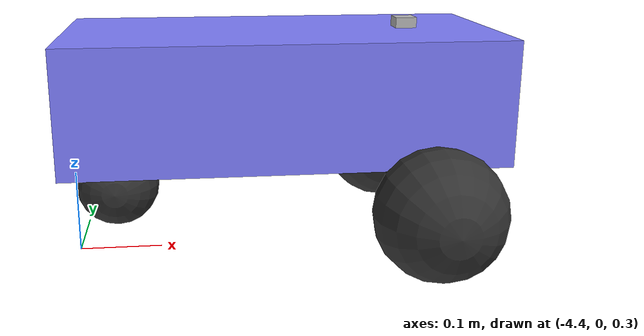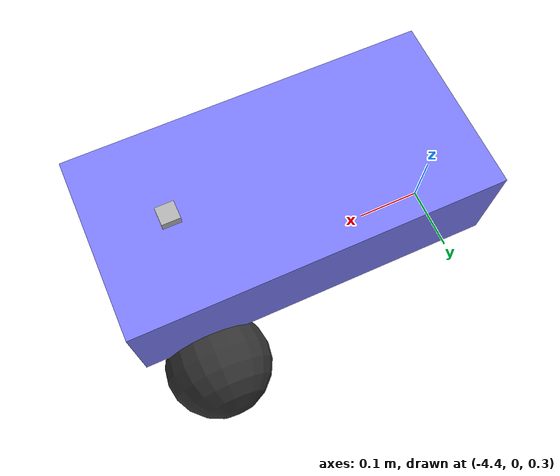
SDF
<?xml version="1.0" ?>
<!--
  You can echo lidar messages using:
    gz topic -e -t /lidar
-->
<sdf version="1.9">
    <model name='robot3'>
      <pose>-4 0 0.325 0 0 0.0</pose>
      <link name='chassis'>
        <pose>-0.151427 -0 0.175 0 -0 0</pose>
        <inertial>
          <mass>1.14395</mass>
          <inertia>
            <ixx>0.126164</ixx>
            <ixy>0</ixy>
            <ixz>0</ixz>
            <iyy>0.416519</iyy>
            <iyz>0</iyz>
            <izz>0.481014</izz>
          </inertia>
        </inertial>
        <visual name='visual'>
          <geometry>
            <box>
              <size>0.503 0.25 0.143</size>
            </box>
          </geometry>
          <material>
            <ambient>0.5 0.5 1.0 1</ambient>
            <diffuse>0.5 0.5 1.0 1</diffuse>
            <specular>0.0 0.0 1.0 1</specular>
          </material>
        </visual>
        <collision name='collision'>
          <geometry>
            <box>
              <size>0.503 0.25 0.143</size>
            </box>
          </geometry>
        </collision>
      </link>

      <link name="lidar_link">
        <pose>0 0 0.2465 0 0 0</pose>
        <inertial>
          <mass>0.1</mass>
          <inertia>
            <ixx>0.000166667</ixx>
            <iyy>0.000166667</iyy>
            <izz>0.000166667</izz>
          </inertia>
        </inertial>
        <collision name="collision">
          <geometry>
            <box>
              <size>0.025 0.025 0.025</size>
            </box>
          </geometry>
        </collision>
        <visual name="visual">
          <geometry>
            <box>
              <size>0.025 0.025 0.025</size>
            </box>
          </geometry>
        </visual>
        <sensor name='gpu_lidar' type='gpu_lidar'>
        <pose>0 0 0 0 0 0</pose>
          <topic>/model/robot3/lidar2</topic>
          <update_rate>10</update_rate>
          <lidar>
            <scan>
              <horizontal>
                <samples>640</samples>
                <resolution>1</resolution>
                <min_angle>-1.396263</min_angle>
                <max_angle>1.396263</max_angle>
              </horizontal>
              <vertical>
                <samples>1</samples>
                <resolution>1</resolution>
                <min_angle>0.0</min_angle>
                <max_angle>0.0</max_angle>
              </vertical>
              <!-- add guassian noise-->
              <noise>
                <type>gaussian</type>
                <mean>0.0</mean>
                <stddev>0.01</stddev>
              </noise>
            </scan>
            <range>
              <min>0.08</min>
              <max>10.0</max>
              <resolution>0.01</resolution>
            </range>
          </lidar>
          <always_on>1</always_on>
          <visualize>true</visualize>
        </sensor>
      </link>

      <link name='left_wheel'>
        <pose>0.01 0.15 0.06 -1.5707 0 0</pose>
        <inertial>
          <mass>2</mass>
          <inertia>
            <ixx>0.145833</ixx>
            <ixy>0</ixy>
            <ixz>0</ixz>
            <iyy>0.145833</iyy>
            <iyz>0</iyz>
            <izz>0.125</izz>
          </inertia>
        </inertial>
        <visual name='visual'>
          <geometry>
            <sphere>
              <radius>0.075</radius>
            </sphere>
          </geometry>
          <material>
            <ambient>0.2 0.2 0.2 1</ambient>
            <diffuse>0.2 0.2 0.2 1</diffuse>
            <specular>0.2 0.2 0.2 1</specular>
          </material>
        </visual>
        <collision name='collision'>
          <geometry>
            <sphere>
              <radius>0.075</radius>
            </sphere>
          </geometry>
        </collision>
      </link>

      <link name='right_wheel'>
        <pose>0.01 -0.15 0.06 -1.5707 0 0</pose>
        <inertial>
          <mass>2</mass>
          <inertia>
            <ixx>0.145833</ixx>
            <ixy>0</ixy>
            <ixz>0</ixz>
            <iyy>0.145833</iyy>
            <iyz>0</iyz>
            <izz>0.125</izz>
          </inertia>
        </inertial>
        <visual name='visual'>
          <geometry>
            <sphere>
              <radius>0.075</radius>
            </sphere>
          </geometry>
          <material>
            <ambient>0.2 0.2 0.2 1</ambient>
            <diffuse>0.2 0.2 0.2 1</diffuse>
            <specular>0.2 0.2 0.2 1</specular>
          </material>
        </visual>
        <collision name='collision'>
          <geometry>
            <sphere>
              <radius>0.075</radius>
            </sphere>
          </geometry>
        </collision>
      </link>

      <link name='caster'>
        <pose>-0.35 0 0.06 -1.5707 0 0 </pose>
        <inertial>
          <mass>1</mass>
          <inertia>
            <ixx>0.1</ixx>
            <ixy>0</ixy>
            <ixz>0</ixz>
            <iyy>0.1</iyy>
            <iyz>0</iyz>
            <izz>0.1</izz>
          </inertia>
        </inertial>
        <visual name='visual'>
          <geometry>
            <sphere>
              <radius>0.05</radius>
            </sphere>
          </geometry>
          <material>
            <ambient>0.2 0.2 0.2 1</ambient>
            <diffuse>0.2 0.2 0.2 1</diffuse>
            <specular>0.2 0.2 0.2 1</specular>
          </material>
        </visual>
        <collision name='collision'>
          <geometry>
            <sphere>
              <radius>0.05</radius>
            </sphere>
          </geometry>
        </collision>
      </link>

      <joint name='lidar_sensor_joint' type='fixed'>
        <parent>chassis</parent>
        <child>lidar_link</child>
      </joint>

      <joint name='left_wheel_joint' type='revolute'>
        <parent>chassis</parent>
        <child>left_wheel</child>
        <axis>
          <xyz>0 0 1</xyz>
          <limit>
            <lower>-1.79769e+308</lower>
            <upper>1.79769e+308</upper>
          </limit>
        </axis>
      </joint>

      <joint name='right_wheel_joint' type='revolute'>
        <parent>chassis</parent>
        <child>right_wheel</child>
        <axis>
          <xyz>0 0 1</xyz>
          <limit>
            <lower>-1.79769e+308</lower>
            <upper>1.79769e+308</upper>
          </limit>
        </axis>
      </joint>

      <joint name='caster_wheel' type='ball'>
        <parent>chassis</parent>
        <child>caster</child>
      </joint>

      <plugin
        filename="libignition-gazebo-diff-drive-system.so"
        name="ignition::gazebo::systems::DiffDrive">
        <left_joint>left_wheel_joint</left_joint>
        <right_joint>right_wheel_joint</right_joint>
        <wheel_separation>0.3</wheel_separation>
        <wheel_radius>0.075</wheel_radius>
        <odom_publish_frequency>1</odom_publish_frequency>
        <topic>/model/robot3/cmd_vel</topic>
      </plugin>
    </model>
</sdf>
